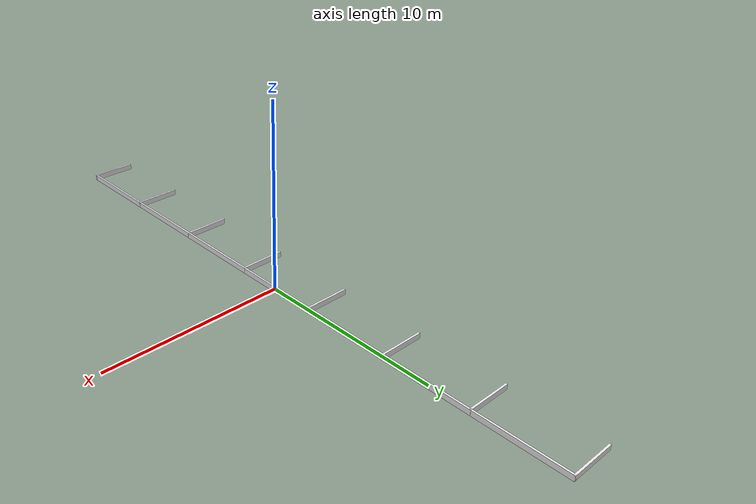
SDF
<?xml version="1.0" encoding="UTF-8"?>
<!-- |    This document was autogenerated by xacro4sdf from model.sdf.xmacro           | -->
<!-- |    EDITING THIS FILE BY HAND IS NOT RECOMMENDED                                 | -->
<sdf version="1.7">
	<model name="griglia_parcheggio">
		<!--parcheggio centrale-->
		<include>
			<uri>/home/studenti/catkin_ws/src/autopark/models/parcheggio</uri>
			<name>parking1</name>
			<pose> 0 0 0 0 0 0 </pose>
			<static>0</static>
		</include>
		<!--tre parcheggi a destra-->
		<include>
			<uri>/home/studenti/catkin_ws/src/autopark/models/parcheggio</uri>
			<name>parking2</name>
			<pose> 0 4.9 0 0 0 0 </pose>
			<static>0</static>
		</include>
		<include>
			<uri>/home/studenti/catkin_ws/src/autopark/models/parcheggio</uri>
			<name>parking3</name>
			<pose> 0 9.8 0 0 0 0 </pose>
			<static>0</static>
		</include>
		<include>
			<uri>/home/studenti/catkin_ws/src/autopark/models/parcheggio</uri>
			<name>parking4</name>
			<pose> 0 14.7 0 0 0 0 </pose>
			<static>0</static>
		</include>
		<!--tre parcheggi a sinistra-->
		<include>
			<uri>/home/studenti/catkin_ws/src/autopark/models/parcheggio</uri>
			<name>parking5</name>
			<pose> 0 -4.9 0 0 0 0 </pose>
			<static>0</static>
		</include>
		<include>
			<uri>/home/studenti/catkin_ws/src/autopark/models/parcheggio</uri>
			<name>parking6</name>
			<pose> 0 -9.8 0 0 0 0 </pose>
			<static>0</static>
		</include>
		<include>
			<uri>/home/studenti/catkin_ws/src/autopark/models/parcheggio</uri>
			<name>parking7</name>
			<pose> 0 -14.7 0 0 0 0 </pose>
			<static>0</static>
		</include>
	</model>
</sdf>

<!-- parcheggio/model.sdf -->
<!-- |    This document was autogenerated by xacro4sdf from model.sdf.xmacro           | -->
<!-- |    EDITING THIS FILE BY HAND IS NOT RECOMMENDED                                 | -->
<sdf version="1.7">
	<!--creo una lista di proprietà utili-->
	<model name="parcheggio">
		<link name="link_1">
			<pose> -1.2 -2.45 0 0 -0 0</pose>
			<gravity>0</gravity>
			<self_collide>0</self_collide>
			<kinematic>0</kinematic>
			<enable_wind>0</enable_wind>
			<visual name="visual">
				<pose>0 0 0 0 -0 0</pose>
				<geometry>
					<box>
						<size>2.5 0.1 0.305</size>
					</box>
				</geometry>
				<material>
					<specular>0.1 0.1 0.1 1</specular>
					<diffuse>0 0 0 1</diffuse>
					<lighting>0</lighting>
					<script>
						<uri>file://media/materials/scripts/Gazebo.material</uri>
						<name>Gazebo/White</name>
					</script>
					<shader type="pixel">
						<normal_map>default</normal_map>
					</shader>
					<emissive>0 0 0 1</emissive>
					<ambient>0 0 0 1</ambient>
				</material>
				<transparency>0</transparency>
				<cast_shadows>1</cast_shadows>
			</visual>
		</link>
		<static>0</static>
		<allow_auto_disable>1</allow_auto_disable>
		<link name="link_2">
			<pose>0 0 0 0 -0 0</pose>
			<gravity>0</gravity>
			<self_collide>0</self_collide>
			<kinematic>0</kinematic>
			<enable_wind>0</enable_wind>
			<visual name="visual">
				<pose>0 0 0 0 -0 0</pose>
				<geometry>
					<box>
						<size>0.1 5.0 0.305</size>
					</box>
				</geometry>
				<material>
					<specular>0.1 0.1 0.1 1</specular>
					<diffuse>0 0 0 1</diffuse>
					<lighting>0</lighting>
					<script>
						<uri>file://media/materials/scripts/Gazebo.material</uri>
						<name>Gazebo/White</name>
					</script>
					<shader type="pixel">
						<normal_map>default</normal_map>
					</shader>
					<emissive>0 0 0 1</emissive>
					<ambient>0 0 0 1</ambient>
				</material>
				<transparency>0</transparency>
				<cast_shadows>1</cast_shadows>
			</visual>
		</link>
		<static>0</static>
		<allow_auto_disable>1</allow_auto_disable>
		<link name="link_3">
			<pose>-1.2 2.45 0 0 -0 0</pose>
			<gravity>0</gravity>
			<self_collide>0</self_collide>
			<kinematic>0</kinematic>
			<enable_wind>0</enable_wind>
			<visual name="visual">
				<pose>0 0 0 0 -0 0</pose>
				<geometry>
					<box>
						<size>2.5 0.1 0.305</size>
					</box>
				</geometry>
				<material>
					<specular>0.1 0.1 0.1 1</specular>
					<diffuse>0 0 0 1</diffuse>
					<lighting>0</lighting>
					<script>
						<uri>file://media/materials/scripts/Gazebo.material</uri>
						<name>Gazebo/White</name>
					</script>
					<shader type="pixel">
						<normal_map>default</normal_map>
					</shader>
					<emissive>0 0 0 1</emissive>
					<ambient>0 0 0 1</ambient>
				</material>
				<transparency>0</transparency>
				<cast_shadows>1</cast_shadows>
			</visual>
		</link>
		<static>0</static>
		<allow_auto_disable>1</allow_auto_disable>
	</model>
</sdf>
